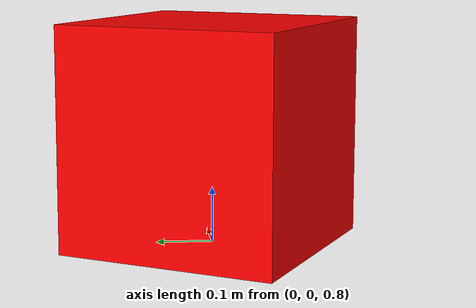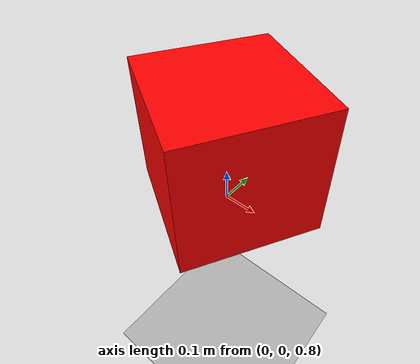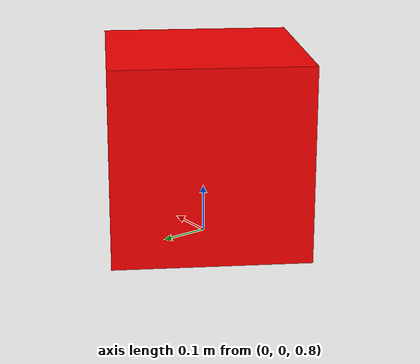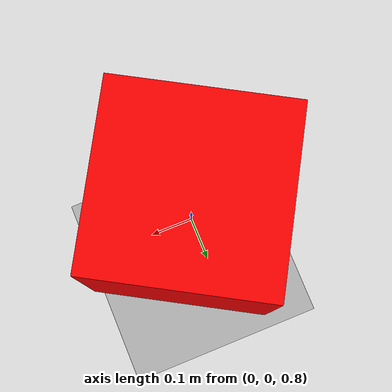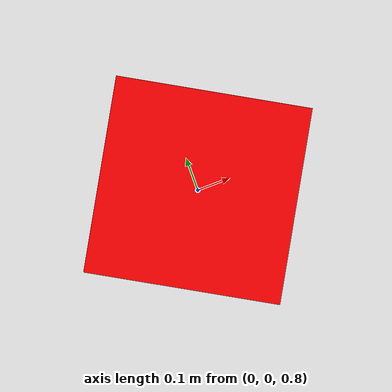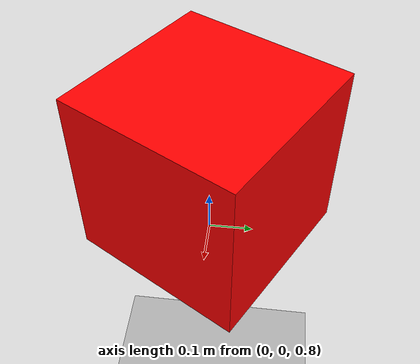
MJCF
<mujoco>
    <worldbody>
        <light name="top" pos="0 0 1"/>
        <geom type="plane" size="1 1 0.1" rgba=".7 .7 .7 1"/>
        <body name="box" pos="0 0 1" euler="0 0 -30">
            <joint name="freej" type="free"/>
            <geom name="red_box" type="box" size=".2 .2 .2" rgba="1 0 0 1"/>
        </body>
    </worldbody>
    <actuator>
        <motor name="fmotor" joint="freej"/>
    </actuator>
</mujoco>
